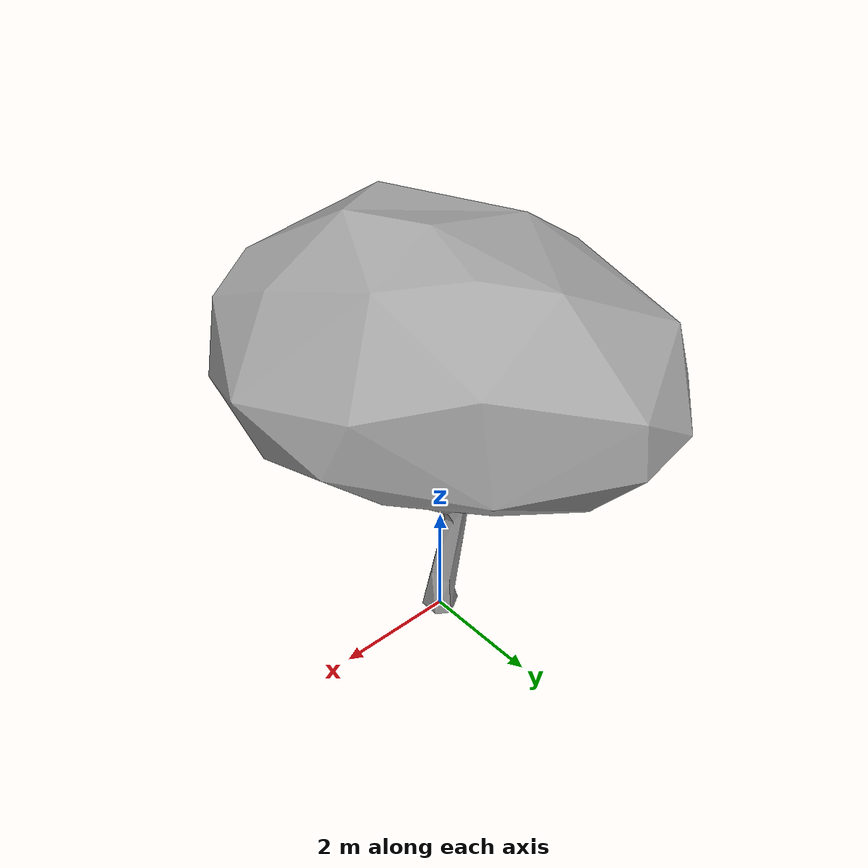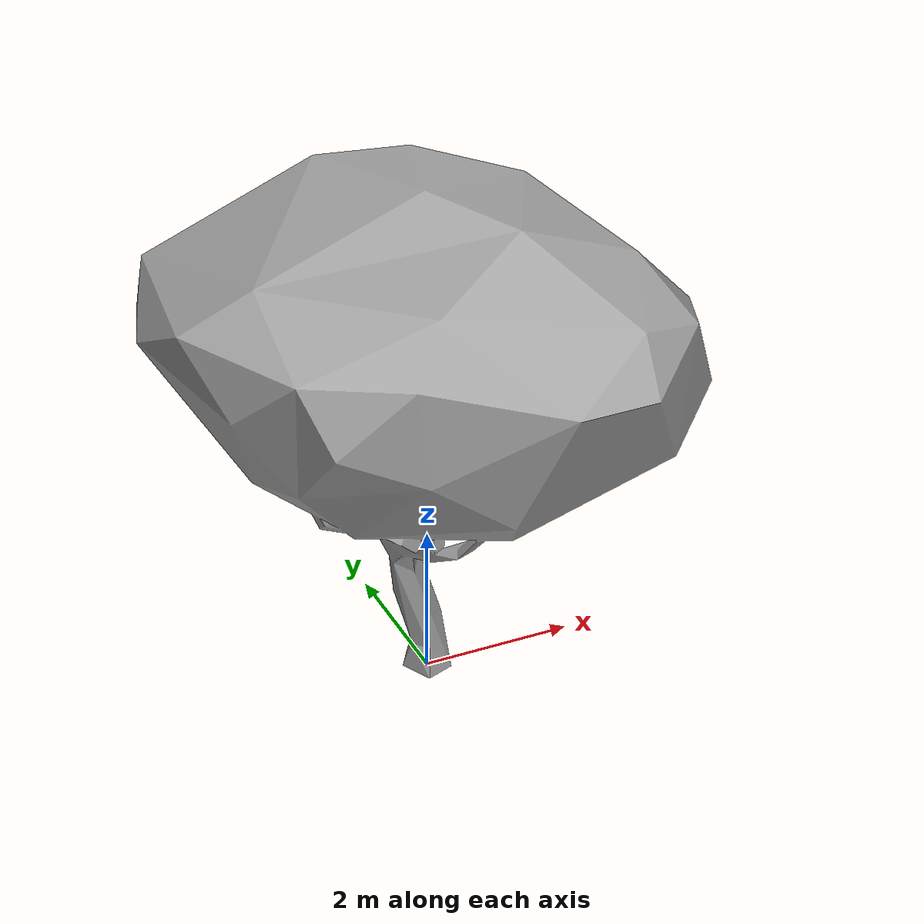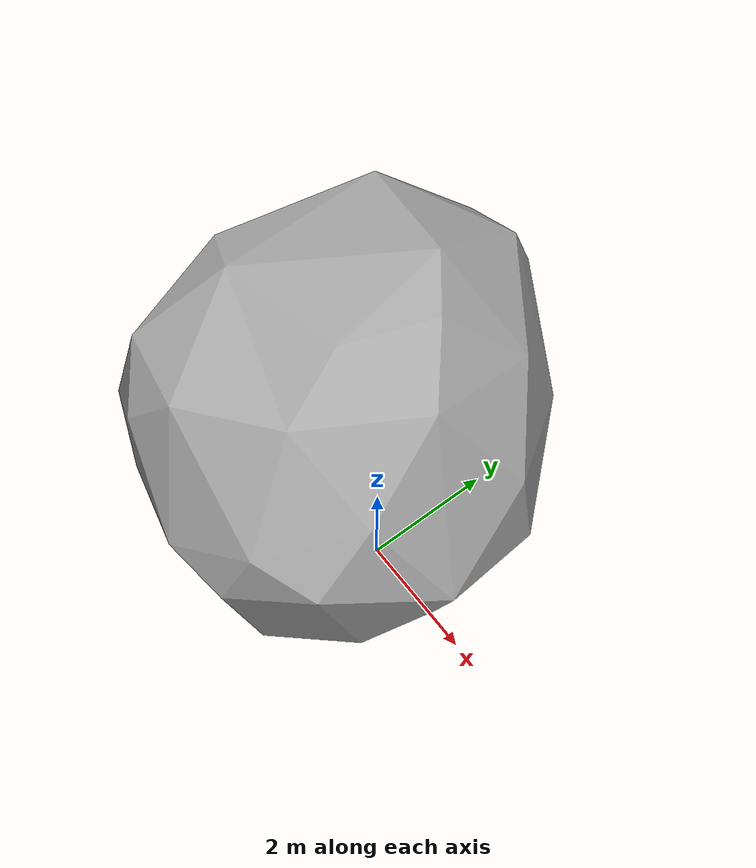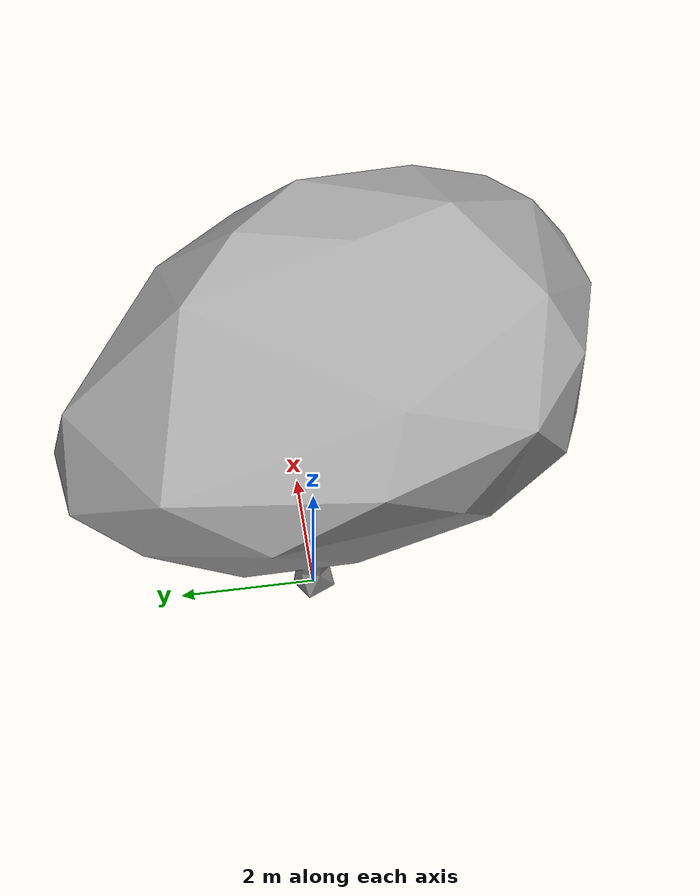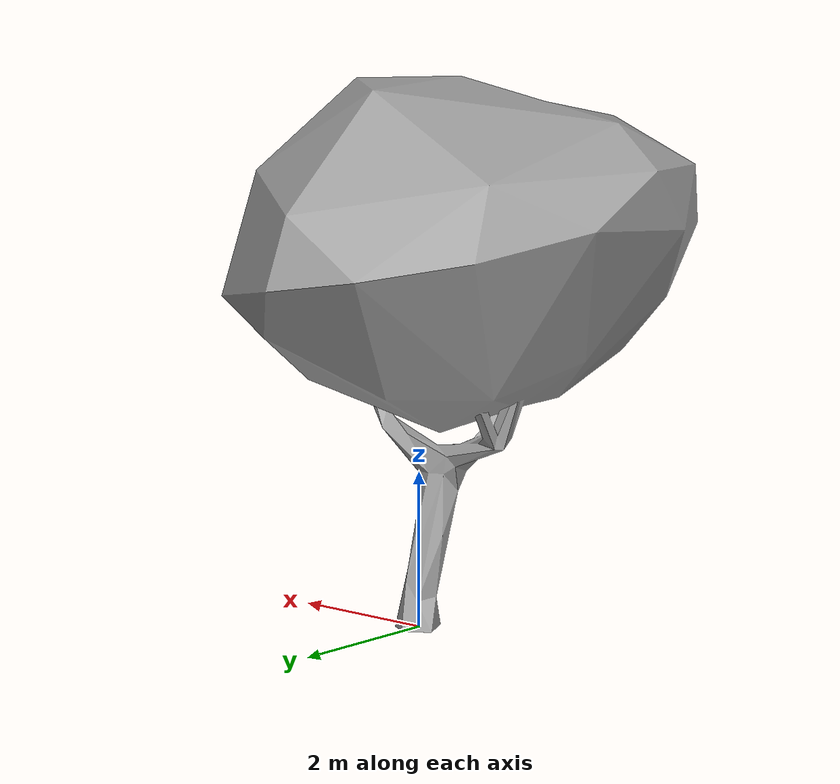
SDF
<?xml version="1.0" ?>
<sdf version="1.6">
  <model name="windsor_tree_2">
    <static>true</static>
    <link name="link">
      <collision name="collision">
	<pose>0 0 0 0 0 0</pose>
        <geometry>
          <mesh>
  	    <scale>1 1 1</scale>
            <uri>model://windsor_tree_2/meshes/windsor_tree_2.dae</uri>
          </mesh>
        </geometry>
      </collision>
      <visual name="visual">
	<pose>0 0 0 0 0 0</pose>
        <geometry>
          <mesh>
  	    <scale>1 1 1</scale>
            <uri>model://windsor_tree_2/meshes/windsor_tree_2.dae</uri>
          </mesh>
        </geometry>
      </visual>
    </link>
  </model>

</sdf>
